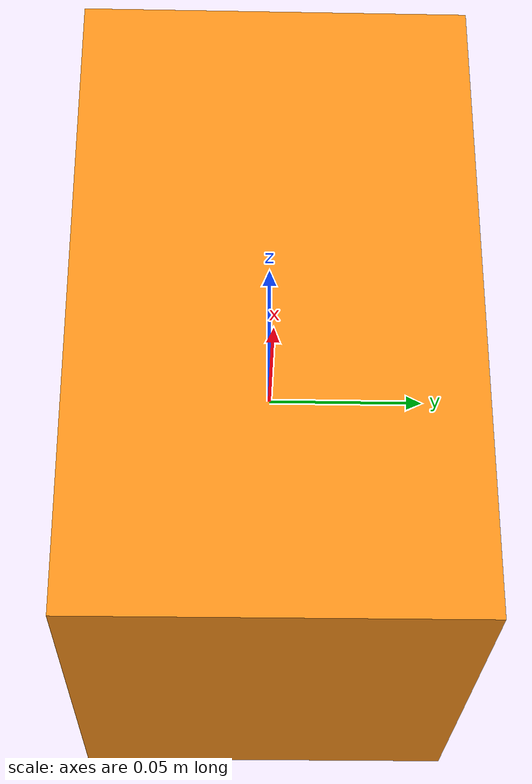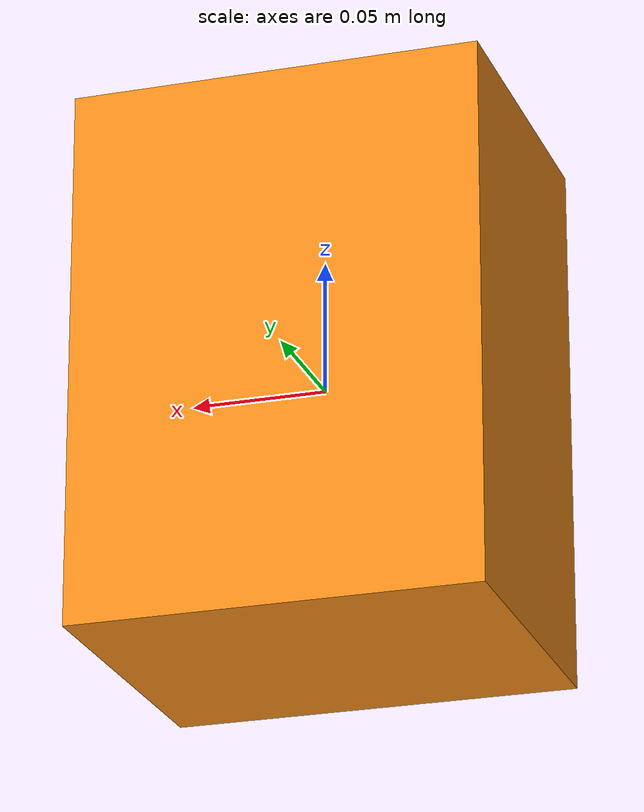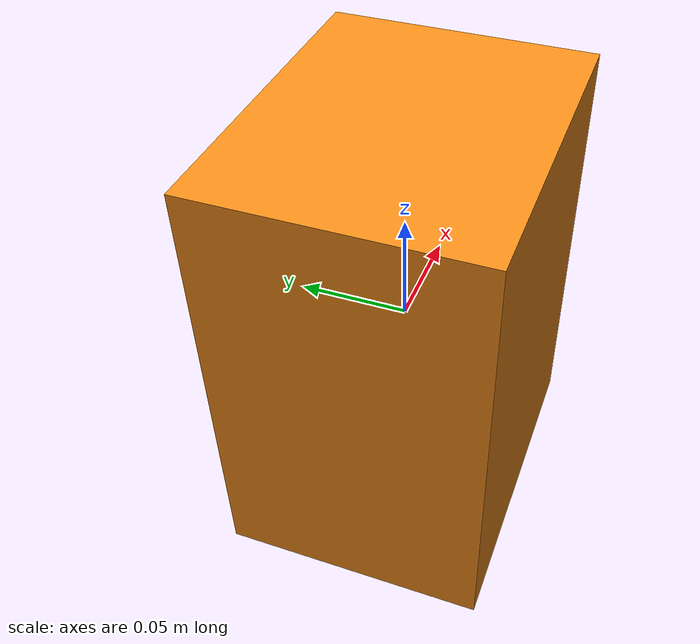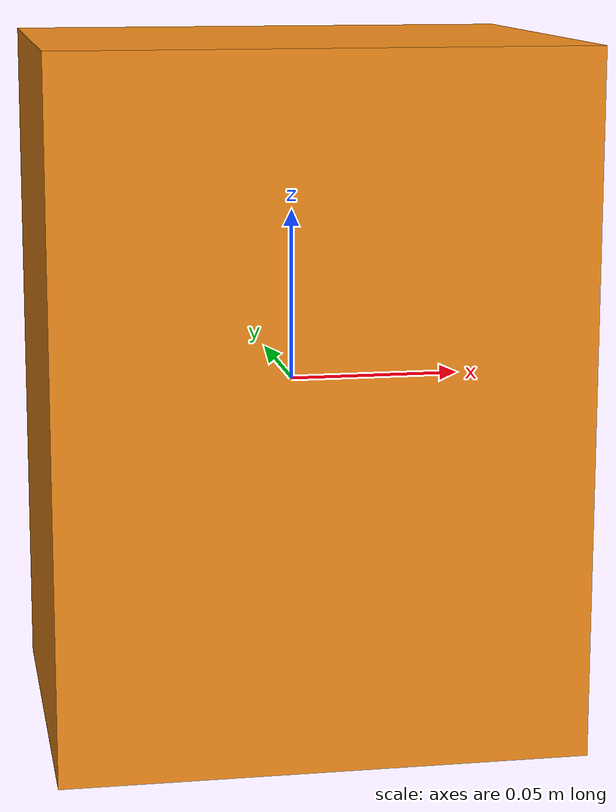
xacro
<?xml version="1.0" ?>
<robot xmlns:xacro="http://ros.org/wiki/xacro">

	<property name="M_PI" value="3.1415926535897931" />
	<property name="HEIGTH" value="1.1" />
	<property name="HAND_LENGTH" value="0.18" />
	<property name="HAND_WIDTH" value="0.07" />
	<property name="HAND_THICK" value="0.015" />

	<property name="prefix" value="human_" />

	<link name="${prefix}head_link">
            <visual>
                <origin xyz="0 0 0" rpy="${M_PI/2} 0 -${M_PI/2}" />
                <geometry name="${prefix}head_visual_geom">
                    <!-- mesh filename="package://bert2_gazebo/meshes/human_head.stl" scale="0.052 0.052 0.052" / -->
                    <box size="0.12 0.2 0.15"/>
                </geometry>
                <material name="orange"/>
            </visual>
            <collision>
                <origin xyz="0 0 0" rpy="${M_PI/2} 0 -${M_PI/2}" />
                <geometry name="${prefix}head_coll_geom">
                    <box size="0.12 0.2 0.15"/>
                </geometry>
            </collision>
    	    <inertial>
    		<mass value="1"/>
                <inertia ixx="1" ixy="0.0" ixz="0.0" iyy="1" iyz="0.0" izz="1"/>
    	    </inertial>
        </link>

    	<gazebo reference="${prefix}head_link">
           <material>Gazebo/Orange</material>
   	   <turnGravityOff>true</turnGravityOff>
	   <selfCollide>true</selfCollide>
  	</gazebo>

</robot>
